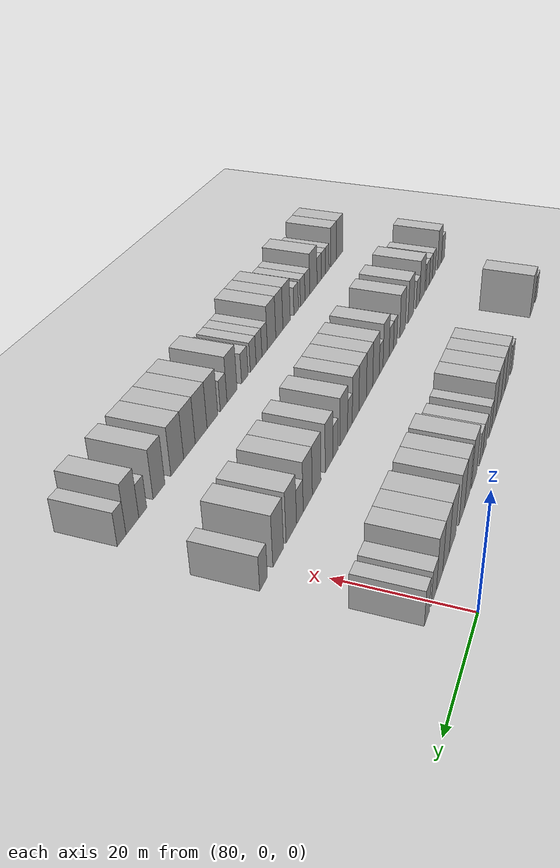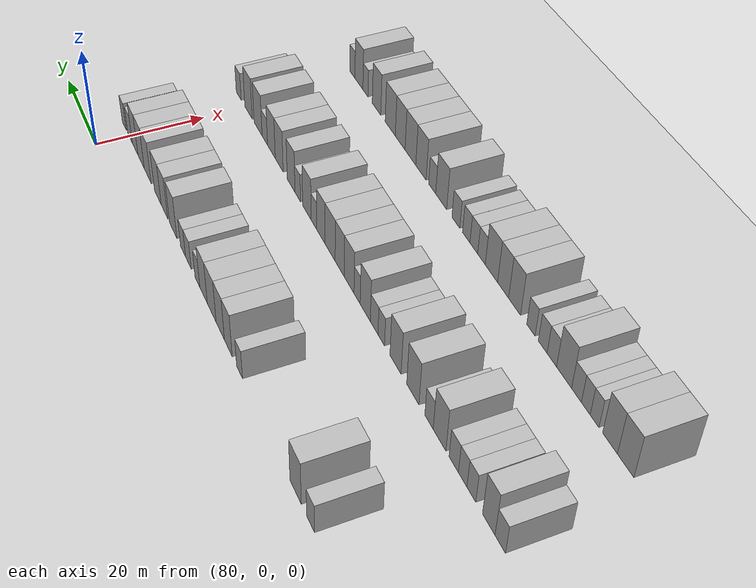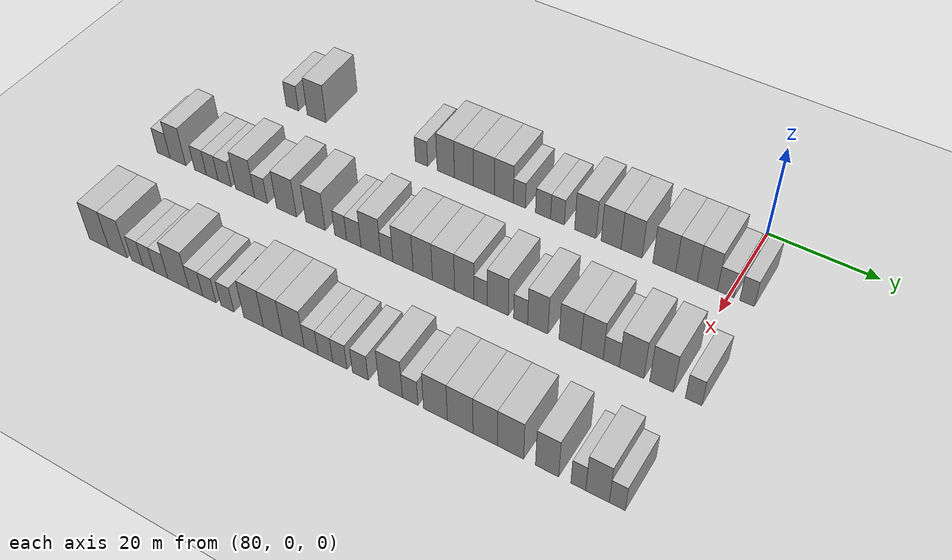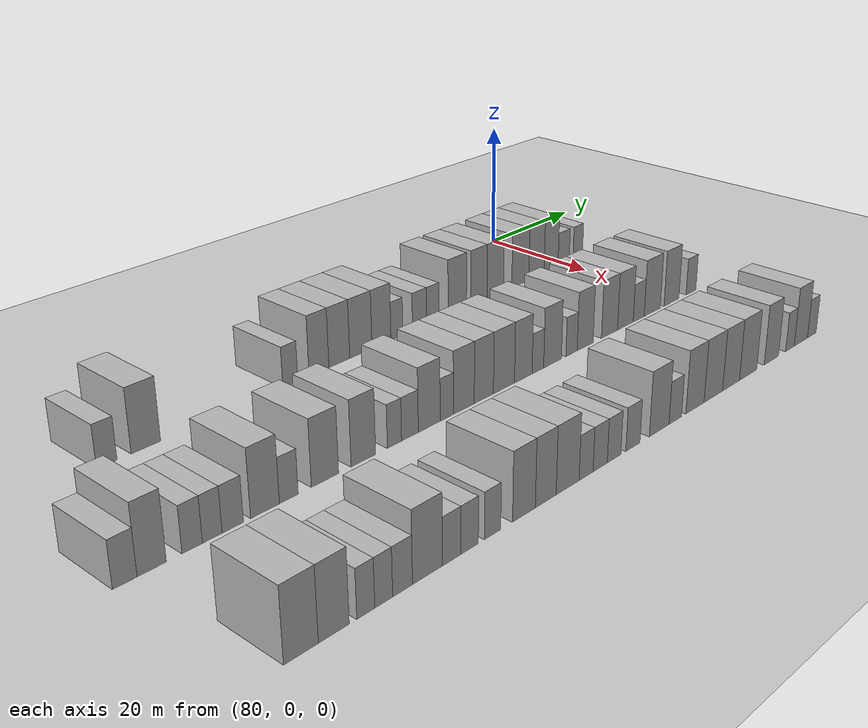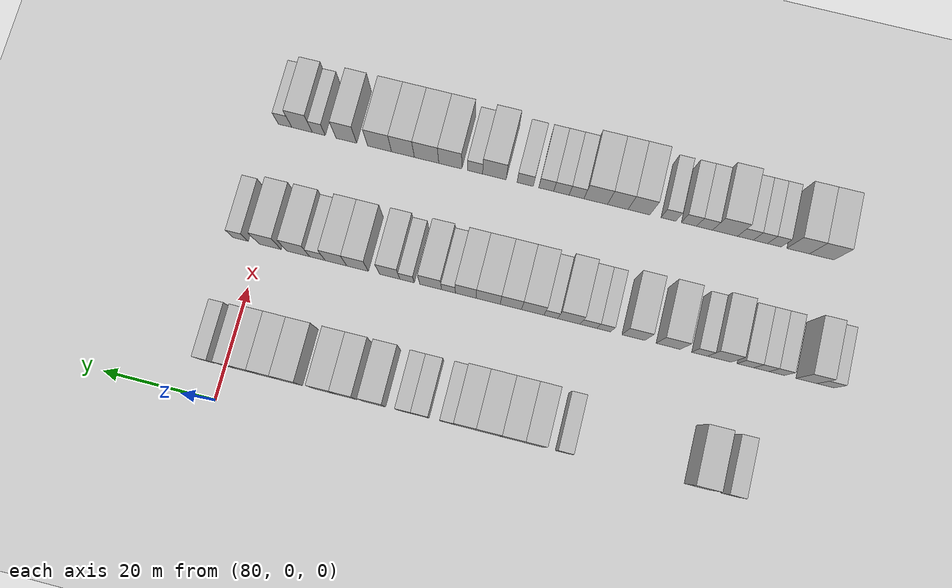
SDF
<sdf version="1.6">
 <world name="default">
  <include>
   <name>ground_plane_2</name>
   <uri>model://HANNAS_ground_plane</uri>
   <pose>100 0 0  0 0 0</pose>
  </include>
  <model name="building_643">
   <static>1</static>
   <pose>91.0000 -88.3164 0 0.000000 0.000000 0.000000</pose>
   <link name="link">
    <pose>0 0 3.00 0 0 0</pose>
    <collision name="collision"><geometry><box><size>10.0000 2.8639 6.0000</size></box></geometry></collision>
    <visual name="visual">
     <cast_shadows>0</cast_shadows>
     <geometry><box><size>10.0000 2.8639 6.0000</size></box></geometry>
     <material>
      <script>
       <uri>model://HANNAS_wall/materials/scripts</uri>
       <uri>model://HANNAS_wall/materials/textures</uri>
       <name>vrc/HANNAS_wall</name>
      </script>
     </material>
    </visual>
   </link>
  </model>
  <model name="building_644">
   <static>1</static>
   <pose>91.0000 -82.7383 0 0.000000 0.000000 0.000000</pose>
   <link name="link">
    <pose>0 0 4.50 0 0 0</pose>
    <collision name="collision"><geometry><box><size>10.0000 4.2922 9.0000</size></box></geometry></collision>
    <visual name="visual">
     <cast_shadows>0</cast_shadows>
     <geometry><box><size>10.0000 4.2922 9.0000</size></box></geometry>
     <material>
      <script>
       <uri>model://HANNAS_wall/materials/scripts</uri>
       <uri>model://HANNAS_wall/materials/textures</uri>
       <name>vrc/HANNAS_wall</name>
      </script>
     </material>
    </visual>
   </link>
  </model>
  <model name="building_645">
   <static>1</static>
   <pose>91.0000 -59.6268 0 0.000000 0.000000 0.000000</pose>
   <link name="link">
    <pose>0 0 3.00 0 0 0</pose>
    <collision name="collision"><geometry><box><size>10.0000 2.6437 6.0000</size></box></geometry></collision>
    <visual name="visual">
     <cast_shadows>0</cast_shadows>
     <geometry><box><size>10.0000 2.6437 6.0000</size></box></geometry>
     <material>
      <script>
       <uri>model://HANNAS_wall/materials/scripts</uri>
       <uri>model://HANNAS_wall/materials/textures</uri>
       <name>vrc/HANNAS_wall</name>
      </script>
     </material>
    </visual>
   </link>
  </model>
  <model name="building_646">
   <static>1</static>
   <pose>91.0000 -54.4919 0 0.000000 0.000000 0.000000</pose>
   <link name="link">
    <pose>0 0 4.50 0 0 0</pose>
    <collision name="collision"><geometry><box><size>10.0000 3.6260 9.0000</size></box></geometry></collision>
    <visual name="visual">
     <cast_shadows>0</cast_shadows>
     <geometry><box><size>10.0000 3.6260 9.0000</size></box></geometry>
     <material>
      <script>
       <uri>model://HANNAS_wall/materials/scripts</uri>
       <uri>model://HANNAS_wall/materials/textures</uri>
       <name>vrc/HANNAS_wall</name>
      </script>
     </material>
    </visual>
   </link>
  </model>
  <model name="building_647">
   <static>1</static>
   <pose>91.0000 -50.7191 0 0.000000 0.000000 0.000000</pose>
   <link name="link">
    <pose>0 0 4.50 0 0 0</pose>
    <collision name="collision"><geometry><box><size>10.0000 3.9195 9.0000</size></box></geometry></collision>
    <visual name="visual">
     <cast_shadows>0</cast_shadows>
     <geometry><box><size>10.0000 3.9195 9.0000</size></box></geometry>
     <material>
      <script>
       <uri>model://HANNAS_wall/materials/scripts</uri>
       <uri>model://HANNAS_wall/materials/textures</uri>
       <name>vrc/HANNAS_wall</name>
      </script>
     </material>
    </visual>
   </link>
  </model>
  <model name="building_648">
   <static>1</static>
   <pose>91.0000 -46.6014 0 0.000000 0.000000 0.000000</pose>
   <link name="link">
    <pose>0 0 4.50 0 0 0</pose>
    <collision name="collision"><geometry><box><size>10.0000 4.3159 9.0000</size></box></geometry></collision>
    <visual name="visual">
     <cast_shadows>0</cast_shadows>
     <geometry><box><size>10.0000 4.3159 9.0000</size></box></geometry>
     <material>
      <script>
       <uri>model://HANNAS_wall/materials/scripts</uri>
       <uri>model://HANNAS_wall/materials/textures</uri>
       <name>vrc/HANNAS_wall</name>
      </script>
     </material>
    </visual>
   </link>
  </model>
  <model name="building_649">
   <static>1</static>
   <pose>91.0000 -42.5473 0 0.000000 0.000000 0.000000</pose>
   <link name="link">
    <pose>0 0 4.50 0 0 0</pose>
    <collision name="collision"><geometry><box><size>10.0000 3.7922 9.0000</size></box></geometry></collision>
    <visual name="visual">
     <cast_shadows>0</cast_shadows>
     <geometry><box><size>10.0000 3.7922 9.0000</size></box></geometry>
     <material>
      <script>
       <uri>model://HANNAS_wall/materials/scripts</uri>
       <uri>model://HANNAS_wall/materials/textures</uri>
       <name>vrc/HANNAS_wall</name>
      </script>
     </material>
    </visual>
   </link>
  </model>
  <model name="building_650">
   <static>1</static>
   <pose>91.0000 -39.4454 0 0.000000 0.000000 0.000000</pose>
   <link name="link">
    <pose>0 0 3.00 0 0 0</pose>
    <collision name="collision"><geometry><box><size>10.0000 2.4118 6.0000</size></box></geometry></collision>
    <visual name="visual">
     <cast_shadows>0</cast_shadows>
     <geometry><box><size>10.0000 2.4118 6.0000</size></box></geometry>
     <material>
      <script>
       <uri>model://HANNAS_wall/materials/scripts</uri>
       <uri>model://HANNAS_wall/materials/textures</uri>
       <name>vrc/HANNAS_wall</name>
      </script>
     </material>
    </visual>
   </link>
  </model>
  <model name="building_651">
   <static>1</static>
   <pose>91.0000 -34.7505 0 0.000000 0.000000 0.000000</pose>
   <link name="link">
    <pose>0 0 3.00 0 0 0</pose>
    <collision name="collision"><geometry><box><size>10.0000 2.9779 6.0000</size></box></geometry></collision>
    <visual name="visual">
     <cast_shadows>0</cast_shadows>
     <geometry><box><size>10.0000 2.9779 6.0000</size></box></geometry>
     <material>
      <script>
       <uri>model://HANNAS_wall/materials/scripts</uri>
       <uri>model://HANNAS_wall/materials/textures</uri>
       <name>vrc/HANNAS_wall</name>
      </script>
     </material>
    </visual>
   </link>
  </model>
  <model name="building_652">
   <static>1</static>
   <pose>91.0000 -31.9219 0 0.000000 0.000000 0.000000</pose>
   <link name="link">
    <pose>0 0 3.00 0 0 0</pose>
    <collision name="collision"><geometry><box><size>10.0000 2.6793 6.0000</size></box></geometry></collision>
    <visual name="visual">
     <cast_shadows>0</cast_shadows>
     <geometry><box><size>10.0000 2.6793 6.0000</size></box></geometry>
     <material>
      <script>
       <uri>model://HANNAS_wall/materials/scripts</uri>
       <uri>model://HANNAS_wall/materials/textures</uri>
       <name>vrc/HANNAS_wall</name>
      </script>
     </material>
    </visual>
   </link>
  </model>
  <model name="building_653">
   <static>1</static>
   <pose>91.0000 -26.5360 0 0.000000 0.000000 0.000000</pose>
   <link name="link">
    <pose>0 0 4.50 0 0 0</pose>
    <collision name="collision"><geometry><box><size>10.0000 4.0925 9.0000</size></box></geometry></collision>
    <visual name="visual">
     <cast_shadows>0</cast_shadows>
     <geometry><box><size>10.0000 4.0925 9.0000</size></box></geometry>
     <material>
      <script>
       <uri>model://HANNAS_wall/materials/scripts</uri>
       <uri>model://HANNAS_wall/materials/textures</uri>
       <name>vrc/HANNAS_wall</name>
      </script>
     </material>
    </visual>
   </link>
  </model>
  <model name="building_654">
   <static>1</static>
   <pose>91.0000 -21.6153 0 0.000000 0.000000 0.000000</pose>
   <link name="link">
    <pose>0 0 4.50 0 0 0</pose>
    <collision name="collision"><geometry><box><size>10.0000 3.7489 9.0000</size></box></geometry></collision>
    <visual name="visual">
     <cast_shadows>0</cast_shadows>
     <geometry><box><size>10.0000 3.7489 9.0000</size></box></geometry>
     <material>
      <script>
       <uri>model://HANNAS_wall/materials/scripts</uri>
       <uri>model://HANNAS_wall/materials/textures</uri>
       <name>vrc/HANNAS_wall</name>
      </script>
     </material>
    </visual>
   </link>
  </model>
  <model name="building_655">
   <static>1</static>
   <pose>91.0000 -17.7852 0 0.000000 0.000000 0.000000</pose>
   <link name="link">
    <pose>0 0 4.50 0 0 0</pose>
    <collision name="collision"><geometry><box><size>10.0000 3.9114 9.0000</size></box></geometry></collision>
    <visual name="visual">
     <cast_shadows>0</cast_shadows>
     <geometry><box><size>10.0000 3.9114 9.0000</size></box></geometry>
     <material>
      <script>
       <uri>model://HANNAS_wall/materials/scripts</uri>
       <uri>model://HANNAS_wall/materials/textures</uri>
       <name>vrc/HANNAS_wall</name>
      </script>
     </material>
    </visual>
   </link>
  </model>
  <model name="building_656">
   <static>1</static>
   <pose>91.0000 -11.7308 0 0.000000 0.000000 0.000000</pose>
   <link name="link">
    <pose>0 0 4.50 0 0 0</pose>
    <collision name="collision"><geometry><box><size>10.0000 4.1974 9.0000</size></box></geometry></collision>
    <visual name="visual">
     <cast_shadows>0</cast_shadows>
     <geometry><box><size>10.0000 4.1974 9.0000</size></box></geometry>
     <material>
      <script>
       <uri>model://HANNAS_wall/materials/scripts</uri>
       <uri>model://HANNAS_wall/materials/textures</uri>
       <name>vrc/HANNAS_wall</name>
      </script>
     </material>
    </visual>
   </link>
  </model>
  <model name="building_657">
   <static>1</static>
   <pose>91.0000 -7.6891 0 0.000000 0.000000 0.000000</pose>
   <link name="link">
    <pose>0 0 4.50 0 0 0</pose>
    <collision name="collision"><geometry><box><size>10.0000 3.8860 9.0000</size></box></geometry></collision>
    <visual name="visual">
     <cast_shadows>0</cast_shadows>
     <geometry><box><size>10.0000 3.8860 9.0000</size></box></geometry>
     <material>
      <script>
       <uri>model://HANNAS_wall/materials/scripts</uri>
       <uri>model://HANNAS_wall/materials/textures</uri>
       <name>vrc/HANNAS_wall</name>
      </script>
     </material>
    </visual>
   </link>
  </model>
  <model name="building_658">
   <static>1</static>
   <pose>91.0000 -3.9419 0 0.000000 0.000000 0.000000</pose>
   <link name="link">
    <pose>0 0 4.50 0 0 0</pose>
    <collision name="collision"><geometry><box><size>10.0000 3.6084 9.0000</size></box></geometry></collision>
    <visual name="visual">
     <cast_shadows>0</cast_shadows>
     <geometry><box><size>10.0000 3.6084 9.0000</size></box></geometry>
     <material>
      <script>
       <uri>model://HANNAS_wall/materials/scripts</uri>
       <uri>model://HANNAS_wall/materials/textures</uri>
       <name>vrc/HANNAS_wall</name>
      </script>
     </material>
    </visual>
   </link>
  </model>
  <model name="building_659">
   <static>1</static>
   <pose>91.0000 -0.6625 0 0.000000 0.000000 0.000000</pose>
   <link name="link">
    <pose>0 0 3.00 0 0 0</pose>
    <collision name="collision"><geometry><box><size>10.0000 2.9503 6.0000</size></box></geometry></collision>
    <visual name="visual">
     <cast_shadows>0</cast_shadows>
     <geometry><box><size>10.0000 2.9503 6.0000</size></box></geometry>
     <material>
      <script>
       <uri>model://HANNAS_wall/materials/scripts</uri>
       <uri>model://HANNAS_wall/materials/textures</uri>
       <name>vrc/HANNAS_wall</name>
      </script>
     </material>
    </visual>
   </link>
  </model>
  <model name="building_660">
   <static>1</static>
   <pose>91.0000 3.0958 0 0.000000 0.000000 0.000000</pose>
   <link name="link">
    <pose>0 0 3.00 0 0 0</pose>
    <collision name="collision"><geometry><box><size>10.0000 2.5663 6.0000</size></box></geometry></collision>
    <visual name="visual">
     <cast_shadows>0</cast_shadows>
     <geometry><box><size>10.0000 2.5663 6.0000</size></box></geometry>
     <material>
      <script>
       <uri>model://HANNAS_wall/materials/scripts</uri>
       <uri>model://HANNAS_wall/materials/textures</uri>
       <name>vrc/HANNAS_wall</name>
      </script>
     </material>
    </visual>
   </link>
  </model>
  <model name="building_827">
   <static>1</static>
   <pose>113.0000 -100.6478 0 0.000000 0.000000 0.000000</pose>
   <link name="link">
    <pose>0 0 3.00 0 0 0</pose>
    <collision name="collision"><geometry><box><size>10.0000 2.9859 6.0000</size></box></geometry></collision>
    <visual name="visual">
     <cast_shadows>0</cast_shadows>
     <geometry><box><size>10.0000 2.9859 6.0000</size></box></geometry>
     <material>
      <script>
       <uri>model://HANNAS_wall/materials/scripts</uri>
       <uri>model://HANNAS_wall/materials/textures</uri>
       <name>vrc/HANNAS_wall</name>
      </script>
     </material>
    </visual>
   </link>
  </model>
  <model name="building_828">
   <static>1</static>
   <pose>113.0000 -97.3290 0 0.000000 0.000000 0.000000</pose>
   <link name="link">
    <pose>0 0 4.50 0 0 0</pose>
    <collision name="collision"><geometry><box><size>10.0000 3.6518 9.0000</size></box></geometry></collision>
    <visual name="visual">
     <cast_shadows>0</cast_shadows>
     <geometry><box><size>10.0000 3.6518 9.0000</size></box></geometry>
     <material>
      <script>
       <uri>model://HANNAS_wall/materials/scripts</uri>
       <uri>model://HANNAS_wall/materials/textures</uri>
       <name>vrc/HANNAS_wall</name>
      </script>
     </material>
    </visual>
   </link>
  </model>
  <model name="building_829">
   <static>1</static>
   <pose>113.0000 -92.1560 0 0.000000 0.000000 0.000000</pose>
   <link name="link">
    <pose>0 0 3.00 0 0 0</pose>
    <collision name="collision"><geometry><box><size>10.0000 2.6942 6.0000</size></box></geometry></collision>
    <visual name="visual">
     <cast_shadows>0</cast_shadows>
     <geometry><box><size>10.0000 2.6942 6.0000</size></box></geometry>
     <material>
      <script>
       <uri>model://HANNAS_wall/materials/scripts</uri>
       <uri>model://HANNAS_wall/materials/textures</uri>
       <name>vrc/HANNAS_wall</name>
      </script>
     </material>
    </visual>
   </link>
  </model>
  <model name="building_830">
   <static>1</static>
   <pose>113.0000 -89.4869 0 0.000000 0.000000 0.000000</pose>
   <link name="link">
    <pose>0 0 3.00 0 0 0</pose>
    <collision name="collision"><geometry><box><size>10.0000 2.6440 6.0000</size></box></geometry></collision>
    <visual name="visual">
     <cast_shadows>0</cast_shadows>
     <geometry><box><size>10.0000 2.6440 6.0000</size></box></geometry>
     <material>
      <script>
       <uri>model://HANNAS_wall/materials/scripts</uri>
       <uri>model://HANNAS_wall/materials/textures</uri>
       <name>vrc/HANNAS_wall</name>
      </script>
     </material>
    </visual>
   </link>
  </model>
  <model name="building_831">
   <static>1</static>
   <pose>113.0000 -86.6893 0 0.000000 0.000000 0.000000</pose>
   <link name="link">
    <pose>0 0 3.00 0 0 0</pose>
    <collision name="collision"><geometry><box><size>10.0000 2.9512 6.0000</size></box></geometry></collision>
    <visual name="visual">
     <cast_shadows>0</cast_shadows>
     <geometry><box><size>10.0000 2.9512 6.0000</size></box></geometry>
     <material>
      <script>
       <uri>model://HANNAS_wall/materials/scripts</uri>
       <uri>model://HANNAS_wall/materials/textures</uri>
       <name>vrc/HANNAS_wall</name>
      </script>
     </material>
    </visual>
   </link>
  </model>
  <model name="building_832">
   <static>1</static>
   <pose>113.0000 -82.1288 0 0.000000 0.000000 0.000000</pose>
   <link name="link">
    <pose>0 0 4.50 0 0 0</pose>
    <collision name="collision"><geometry><box><size>10.0000 4.1698 9.0000</size></box></geometry></collision>
    <visual name="visual">
     <cast_shadows>0</cast_shadows>
     <geometry><box><size>10.0000 4.1698 9.0000</size></box></geometry>
     <material>
      <script>
       <uri>model://HANNAS_wall/materials/scripts</uri>
       <uri>model://HANNAS_wall/materials/textures</uri>
       <name>vrc/HANNAS_wall</name>
      </script>
     </material>
    </visual>
   </link>
  </model>
  <model name="building_833">
   <static>1</static>
   <pose>113.0000 -78.6470 0 0.000000 0.000000 0.000000</pose>
   <link name="link">
    <pose>0 0 3.00 0 0 0</pose>
    <collision name="collision"><geometry><box><size>10.0000 2.7938 6.0000</size></box></geometry></collision>
    <visual name="visual">
     <cast_shadows>0</cast_shadows>
     <geometry><box><size>10.0000 2.7938 6.0000</size></box></geometry>
     <material>
      <script>
       <uri>model://HANNAS_wall/materials/scripts</uri>
       <uri>model://HANNAS_wall/materials/textures</uri>
       <name>vrc/HANNAS_wall</name>
      </script>
     </material>
    </visual>
   </link>
  </model>
  <model name="building_834">
   <static>1</static>
   <pose>113.0000 -73.1141 0 0.000000 0.000000 0.000000</pose>
   <link name="link">
    <pose>0 0 4.50 0 0 0</pose>
    <collision name="collision"><geometry><box><size>10.0000 4.2722 9.0000</size></box></geometry></collision>
    <visual name="visual">
     <cast_shadows>0</cast_shadows>
     <geometry><box><size>10.0000 4.2722 9.0000</size></box></geometry>
     <material>
      <script>
       <uri>model://HANNAS_wall/materials/scripts</uri>
       <uri>model://HANNAS_wall/materials/textures</uri>
       <name>vrc/HANNAS_wall</name>
      </script>
     </material>
    </visual>
   </link>
  </model>
  <model name="building_835">
   <static>1</static>
   <pose>113.0000 -66.9494 0 0.000000 0.000000 0.000000</pose>
   <link name="link">
    <pose>0 0 4.50 0 0 0</pose>
    <collision name="collision"><geometry><box><size>10.0000 4.0571 9.0000</size></box></geometry></collision>
    <visual name="visual">
     <cast_shadows>0</cast_shadows>
     <geometry><box><size>10.0000 4.0571 9.0000</size></box></geometry>
     <material>
      <script>
       <uri>model://HANNAS_wall/materials/scripts</uri>
       <uri>model://HANNAS_wall/materials/textures</uri>
       <name>vrc/HANNAS_wall</name>
      </script>
     </material>
    </visual>
   </link>
  </model>
  <model name="building_836">
   <static>1</static>
   <pose>113.0000 -61.6947 0 0.000000 0.000000 0.000000</pose>
   <link name="link">
    <pose>0 0 3.00 0 0 0</pose>
    <collision name="collision"><geometry><box><size>10.0000 2.4524 6.0000</size></box></geometry></collision>
    <visual name="visual">
     <cast_shadows>0</cast_shadows>
     <geometry><box><size>10.0000 2.4524 6.0000</size></box></geometry>
     <material>
      <script>
       <uri>model://HANNAS_wall/materials/scripts</uri>
       <uri>model://HANNAS_wall/materials/textures</uri>
       <name>vrc/HANNAS_wall</name>
      </script>
     </material>
    </visual>
   </link>
  </model>
  <model name="building_837">
   <static>1</static>
   <pose>113.0000 -58.9876 0 0.000000 0.000000 0.000000</pose>
   <link name="link">
    <pose>0 0 3.00 0 0 0</pose>
    <collision name="collision"><geometry><box><size>10.0000 2.9618 6.0000</size></box></geometry></collision>
    <visual name="visual">
     <cast_shadows>0</cast_shadows>
     <geometry><box><size>10.0000 2.9618 6.0000</size></box></geometry>
     <material>
      <script>
       <uri>model://HANNAS_wall/materials/scripts</uri>
       <uri>model://HANNAS_wall/materials/textures</uri>
       <name>vrc/HANNAS_wall</name>
      </script>
     </material>
    </visual>
   </link>
  </model>
  <model name="building_838">
   <static>1</static>
   <pose>113.0000 -55.5111 0 0.000000 0.000000 0.000000</pose>
   <link name="link">
    <pose>0 0 4.50 0 0 0</pose>
    <collision name="collision"><geometry><box><size>10.0000 3.9912 9.0000</size></box></geometry></collision>
    <visual name="visual">
     <cast_shadows>0</cast_shadows>
     <geometry><box><size>10.0000 3.9912 9.0000</size></box></geometry>
     <material>
      <script>
       <uri>model://HANNAS_wall/materials/scripts</uri>
       <uri>model://HANNAS_wall/materials/textures</uri>
       <name>vrc/HANNAS_wall</name>
      </script>
     </material>
    </visual>
   </link>
  </model>
  <model name="building_839">
   <static>1</static>
   <pose>113.0000 -52.2864 0 0.000000 0.000000 0.000000</pose>
   <link name="link">
    <pose>0 0 3.00 0 0 0</pose>
    <collision name="collision"><geometry><box><size>10.0000 2.4582 6.0000</size></box></geometry></collision>
    <visual name="visual">
     <cast_shadows>0</cast_shadows>
     <geometry><box><size>10.0000 2.4582 6.0000</size></box></geometry>
     <material>
      <script>
       <uri>model://HANNAS_wall/materials/scripts</uri>
       <uri>model://HANNAS_wall/materials/textures</uri>
       <name>vrc/HANNAS_wall</name>
      </script>
     </material>
    </visual>
   </link>
  </model>
  <model name="building_840">
   <static>1</static>
   <pose>113.0000 -49.0506 0 0.000000 0.000000 0.000000</pose>
   <link name="link">
    <pose>0 0 4.50 0 0 0</pose>
    <collision name="collision"><geometry><box><size>10.0000 4.0135 9.0000</size></box></geometry></collision>
    <visual name="visual">
     <cast_shadows>0</cast_shadows>
     <geometry><box><size>10.0000 4.0135 9.0000</size></box></geometry>
     <material>
      <script>
       <uri>model://HANNAS_wall/materials/scripts</uri>
       <uri>model://HANNAS_wall/materials/textures</uri>
       <name>vrc/HANNAS_wall</name>
      </script>
     </material>
    </visual>
   </link>
  </model>
  <model name="building_841">
   <static>1</static>
   <pose>113.0000 -45.1492 0 0.000000 0.000000 0.000000</pose>
   <link name="link">
    <pose>0 0 4.50 0 0 0</pose>
    <collision name="collision"><geometry><box><size>10.0000 3.7891 9.0000</size></box></geometry></collision>
    <visual name="visual">
     <cast_shadows>0</cast_shadows>
     <geometry><box><size>10.0000 3.7891 9.0000</size></box></geometry>
     <material>
      <script>
       <uri>model://HANNAS_wall/materials/scripts</uri>
       <uri>model://HANNAS_wall/materials/textures</uri>
       <name>vrc/HANNAS_wall</name>
      </script>
     </material>
    </visual>
   </link>
  </model>
  <model name="building_842">
   <static>1</static>
   <pose>113.0000 -41.1039 0 0.000000 0.000000 0.000000</pose>
   <link name="link">
    <pose>0 0 4.50 0 0 0</pose>
    <collision name="collision"><geometry><box><size>10.0000 4.3015 9.0000</size></box></geometry></collision>
    <visual name="visual">
     <cast_shadows>0</cast_shadows>
     <geometry><box><size>10.0000 4.3015 9.0000</size></box></geometry>
     <material>
      <script>
       <uri>model://HANNAS_wall/materials/scripts</uri>
       <uri>model://HANNAS_wall/materials/textures</uri>
       <name>vrc/HANNAS_wall</name>
      </script>
     </material>
    </visual>
   </link>
  </model>
  <model name="building_843">
   <static>1</static>
   <pose>113.0000 -37.0992 0 0.000000 0.000000 0.000000</pose>
   <link name="link">
    <pose>0 0 4.50 0 0 0</pose>
    <collision name="collision"><geometry><box><size>10.0000 3.7078 9.0000</size></box></geometry></collision>
    <visual name="visual">
     <cast_shadows>0</cast_shadows>
     <geometry><box><size>10.0000 3.7078 9.0000</size></box></geometry>
     <material>
      <script>
       <uri>model://HANNAS_wall/materials/scripts</uri>
       <uri>model://HANNAS_wall/materials/textures</uri>
       <name>vrc/HANNAS_wall</name>
      </script>
     </material>
    </visual>
   </link>
  </model>
  <model name="building_844">
   <static>1</static>
   <pose>113.0000 -34.0025 0 0.000000 0.000000 0.000000</pose>
   <link name="link">
    <pose>0 0 3.00 0 0 0</pose>
    <collision name="collision"><geometry><box><size>10.0000 2.4857 6.0000</size></box></geometry></collision>
    <visual name="visual">
     <cast_shadows>0</cast_shadows>
     <geometry><box><size>10.0000 2.4857 6.0000</size></box></geometry>
     <material>
      <script>
       <uri>model://HANNAS_wall/materials/scripts</uri>
       <uri>model://HANNAS_wall/materials/textures</uri>
       <name>vrc/HANNAS_wall</name>
      </script>
     </material>
    </visual>
   </link>
  </model>
  <model name="building_845">
   <static>1</static>
   <pose>113.0000 -30.7975 0 0.000000 0.000000 0.000000</pose>
   <link name="link">
    <pose>0 0 4.50 0 0 0</pose>
    <collision name="collision"><geometry><box><size>10.0000 3.9243 9.0000</size></box></geometry></collision>
    <visual name="visual">
     <cast_shadows>0</cast_shadows>
     <geometry><box><size>10.0000 3.9243 9.0000</size></box></geometry>
     <material>
      <script>
       <uri>model://HANNAS_wall/materials/scripts</uri>
       <uri>model://HANNAS_wall/materials/textures</uri>
       <name>vrc/HANNAS_wall</name>
      </script>
     </material>
    </visual>
   </link>
  </model>
  <model name="building_846">
   <static>1</static>
   <pose>113.0000 -26.5447 0 0.000000 0.000000 0.000000</pose>
   <link name="link">
    <pose>0 0 3.00 0 0 0</pose>
    <collision name="collision"><geometry><box><size>10.0000 2.5813 6.0000</size></box></geometry></collision>
    <visual name="visual">
     <cast_shadows>0</cast_shadows>
     <geometry><box><size>10.0000 2.5813 6.0000</size></box></geometry>
     <material>
      <script>
       <uri>model://HANNAS_wall/materials/scripts</uri>
       <uri>model://HANNAS_wall/materials/textures</uri>
       <name>vrc/HANNAS_wall</name>
      </script>
     </material>
    </visual>
   </link>
  </model>
  <model name="building_847">
   <static>1</static>
   <pose>113.0000 -23.3981 0 0.000000 0.000000 0.000000</pose>
   <link name="link">
    <pose>0 0 4.50 0 0 0</pose>
    <collision name="collision"><geometry><box><size>10.0000 3.7118 9.0000</size></box></geometry></collision>
    <visual name="visual">
     <cast_shadows>0</cast_shadows>
     <geometry><box><size>10.0000 3.7118 9.0000</size></box></geometry>
     <material>
      <script>
       <uri>model://HANNAS_wall/materials/scripts</uri>
       <uri>model://HANNAS_wall/materials/textures</uri>
       <name>vrc/HANNAS_wall</name>
      </script>
     </material>
    </visual>
   </link>
  </model>
  <model name="building_848">
   <static>1</static>
   <pose>113.0000 -17.5869 0 0.000000 0.000000 0.000000</pose>
   <link name="link">
    <pose>0 0 4.50 0 0 0</pose>
    <collision name="collision"><geometry><box><size>10.0000 3.9107 9.0000</size></box></geometry></collision>
    <visual name="visual">
     <cast_shadows>0</cast_shadows>
     <geometry><box><size>10.0000 3.9107 9.0000</size></box></geometry>
     <material>
      <script>
       <uri>model://HANNAS_wall/materials/scripts</uri>
       <uri>model://HANNAS_wall/materials/textures</uri>
       <name>vrc/HANNAS_wall</name>
      </script>
     </material>
    </visual>
   </link>
  </model>
  <model name="building_849">
   <static>1</static>
   <pose>113.0000 -13.6650 0 0.000000 0.000000 0.000000</pose>
   <link name="link">
    <pose>0 0 4.50 0 0 0</pose>
    <collision name="collision"><geometry><box><size>10.0000 3.9332 9.0000</size></box></geometry></collision>
    <visual name="visual">
     <cast_shadows>0</cast_shadows>
     <geometry><box><size>10.0000 3.9332 9.0000</size></box></geometry>
     <material>
      <script>
       <uri>model://HANNAS_wall/materials/scripts</uri>
       <uri>model://HANNAS_wall/materials/textures</uri>
       <name>vrc/HANNAS_wall</name>
      </script>
     </material>
    </visual>
   </link>
  </model>
  <model name="building_850">
   <static>1</static>
   <pose>113.0000 -10.2884 0 0.000000 0.000000 0.000000</pose>
   <link name="link">
    <pose>0 0 3.00 0 0 0</pose>
    <collision name="collision"><geometry><box><size>10.0000 2.8199 6.0000</size></box></geometry></collision>
    <visual name="visual">
     <cast_shadows>0</cast_shadows>
     <geometry><box><size>10.0000 2.8199 6.0000</size></box></geometry>
     <material>
      <script>
       <uri>model://HANNAS_wall/materials/scripts</uri>
       <uri>model://HANNAS_wall/materials/textures</uri>
       <name>vrc/HANNAS_wall</name>
      </script>
     </material>
    </visual>
   </link>
  </model>
  <model name="building_851">
   <static>1</static>
   <pose>113.0000 -6.7711 0 0.000000 0.000000 0.000000</pose>
   <link name="link">
    <pose>0 0 4.50 0 0 0</pose>
    <collision name="collision"><geometry><box><size>10.0000 4.2149 9.0000</size></box></geometry></collision>
    <visual name="visual">
     <cast_shadows>0</cast_shadows>
     <geometry><box><size>10.0000 4.2149 9.0000</size></box></geometry>
     <material>
      <script>
       <uri>model://HANNAS_wall/materials/scripts</uri>
       <uri>model://HANNAS_wall/materials/textures</uri>
       <name>vrc/HANNAS_wall</name>
      </script>
     </material>
    </visual>
   </link>
  </model>
  <model name="building_852">
   <static>1</static>
   <pose>113.0000 -1.6491 0 0.000000 0.000000 0.000000</pose>
   <link name="link">
    <pose>0 0 4.50 0 0 0</pose>
    <collision name="collision"><geometry><box><size>10.0000 4.0291 9.0000</size></box></geometry></collision>
    <visual name="visual">
     <cast_shadows>0</cast_shadows>
     <geometry><box><size>10.0000 4.0291 9.0000</size></box></geometry>
     <material>
      <script>
       <uri>model://HANNAS_wall/materials/scripts</uri>
       <uri>model://HANNAS_wall/materials/textures</uri>
       <name>vrc/HANNAS_wall</name>
      </script>
     </material>
    </visual>
   </link>
  </model>
  <model name="building_853">
   <static>1</static>
   <pose>113.0000 3.7383 0 0.000000 0.000000 0.000000</pose>
   <link name="link">
    <pose>0 0 3.00 0 0 0</pose>
    <collision name="collision"><geometry><box><size>10.0000 2.7457 6.0000</size></box></geometry></collision>
    <visual name="visual">
     <cast_shadows>0</cast_shadows>
     <geometry><box><size>10.0000 2.7457 6.0000</size></box></geometry>
     <material>
      <script>
       <uri>model://HANNAS_wall/materials/scripts</uri>
       <uri>model://HANNAS_wall/materials/textures</uri>
       <name>vrc/HANNAS_wall</name>
      </script>
     </material>
    </visual>
   </link>
  </model>
  <model name="building_1015">
   <static>1</static>
   <pose>135.0000 -95.8933 0 0.000000 0.000000 0.000000</pose>
   <link name="link">
    <pose>0 0 4.50 0 0 0</pose>
    <collision name="collision"><geometry><box><size>10.0000 4.3553 9.0000</size></box></geometry></collision>
    <visual name="visual">
     <cast_shadows>0</cast_shadows>
     <geometry><box><size>10.0000 4.3553 9.0000</size></box></geometry>
     <material>
      <script>
       <uri>model://HANNAS_wall/materials/scripts</uri>
       <uri>model://HANNAS_wall/materials/textures</uri>
       <name>vrc/HANNAS_wall</name>
      </script>
     </material>
    </visual>
   </link>
  </model>
  <model name="building_1016">
   <static>1</static>
   <pose>135.0000 -91.7019 0 0.000000 0.000000 0.000000</pose>
   <link name="link">
    <pose>0 0 4.50 0 0 0</pose>
    <collision name="collision"><geometry><box><size>10.0000 4.0276 9.0000</size></box></geometry></collision>
    <visual name="visual">
     <cast_shadows>0</cast_shadows>
     <geometry><box><size>10.0000 4.0276 9.0000</size></box></geometry>
     <material>
      <script>
       <uri>model://HANNAS_wall/materials/scripts</uri>
       <uri>model://HANNAS_wall/materials/textures</uri>
       <name>vrc/HANNAS_wall</name>
      </script>
     </material>
    </visual>
   </link>
  </model>
  <model name="building_1017">
   <static>1</static>
   <pose>135.0000 -87.4520 0 0.000000 0.000000 0.000000</pose>
   <link name="link">
    <pose>0 0 3.00 0 0 0</pose>
    <collision name="collision"><geometry><box><size>10.0000 2.4720 6.0000</size></box></geometry></collision>
    <visual name="visual">
     <cast_shadows>0</cast_shadows>
     <geometry><box><size>10.0000 2.4720 6.0000</size></box></geometry>
     <material>
      <script>
       <uri>model://HANNAS_wall/materials/scripts</uri>
       <uri>model://HANNAS_wall/materials/textures</uri>
       <name>vrc/HANNAS_wall</name>
      </script>
     </material>
    </visual>
   </link>
  </model>
  <model name="building_1018">
   <static>1</static>
   <pose>135.0000 -84.9649 0 0.000000 0.000000 0.000000</pose>
   <link name="link">
    <pose>0 0 3.00 0 0 0</pose>
    <collision name="collision"><geometry><box><size>10.0000 2.5022 6.0000</size></box></geometry></collision>
    <visual name="visual">
     <cast_shadows>0</cast_shadows>
     <geometry><box><size>10.0000 2.5022 6.0000</size></box></geometry>
     <material>
      <script>
       <uri>model://HANNAS_wall/materials/scripts</uri>
       <uri>model://HANNAS_wall/materials/textures</uri>
       <name>vrc/HANNAS_wall</name>
      </script>
     </material>
    </visual>
   </link>
  </model>
  <model name="building_1019">
   <static>1</static>
   <pose>135.0000 -82.2936 0 0.000000 0.000000 0.000000</pose>
   <link name="link">
    <pose>0 0 3.00 0 0 0</pose>
    <collision name="collision"><geometry><box><size>10.0000 2.8404 6.0000</size></box></geometry></collision>
    <visual name="visual">
     <cast_shadows>0</cast_shadows>
     <geometry><box><size>10.0000 2.8404 6.0000</size></box></geometry>
     <material>
      <script>
       <uri>model://HANNAS_wall/materials/scripts</uri>
       <uri>model://HANNAS_wall/materials/textures</uri>
       <name>vrc/HANNAS_wall</name>
      </script>
     </material>
    </visual>
   </link>
  </model>
  <model name="building_1020">
   <static>1</static>
   <pose>135.0000 -78.6257 0 0.000000 0.000000 0.000000</pose>
   <link name="link">
    <pose>0 0 4.50 0 0 0</pose>
    <collision name="collision"><geometry><box><size>10.0000 4.4956 9.0000</size></box></geometry></collision>
    <visual name="visual">
     <cast_shadows>0</cast_shadows>
     <geometry><box><size>10.0000 4.4956 9.0000</size></box></geometry>
     <material>
      <script>
       <uri>model://HANNAS_wall/materials/scripts</uri>
       <uri>model://HANNAS_wall/materials/textures</uri>
       <name>vrc/HANNAS_wall</name>
      </script>
     </material>
    </visual>
   </link>
  </model>
  <model name="building_1021">
   <static>1</static>
   <pose>135.0000 -74.9413 0 0.000000 0.000000 0.000000</pose>
   <link name="link">
    <pose>0 0 3.00 0 0 0</pose>
    <collision name="collision"><geometry><box><size>10.0000 2.8731 6.0000</size></box></geometry></collision>
    <visual name="visual">
     <cast_shadows>0</cast_shadows>
     <geometry><box><size>10.0000 2.8731 6.0000</size></box></geometry>
     <material>
      <script>
       <uri>model://HANNAS_wall/materials/scripts</uri>
       <uri>model://HANNAS_wall/materials/textures</uri>
       <name>vrc/HANNAS_wall</name>
      </script>
     </material>
    </visual>
   </link>
  </model>
  <model name="building_1022">
   <static>1</static>
   <pose>135.0000 -72.1307 0 0.000000 0.000000 0.000000</pose>
   <link name="link">
    <pose>0 0 3.00 0 0 0</pose>
    <collision name="collision"><geometry><box><size>10.0000 2.7481 6.0000</size></box></geometry></collision>
    <visual name="visual">
     <cast_shadows>0</cast_shadows>
     <geometry><box><size>10.0000 2.7481 6.0000</size></box></geometry>
     <material>
      <script>
       <uri>model://HANNAS_wall/materials/scripts</uri>
       <uri>model://HANNAS_wall/materials/textures</uri>
       <name>vrc/HANNAS_wall</name>
      </script>
     </material>
    </visual>
   </link>
  </model>
  <model name="building_1023">
   <static>1</static>
   <pose>135.0000 -68.4190 0 0.000000 0.000000 0.000000</pose>
   <link name="link">
    <pose>0 0 3.00 0 0 0</pose>
    <collision name="collision"><geometry><box><size>10.0000 2.6753 6.0000</size></box></geometry></collision>
    <visual name="visual">
     <cast_shadows>0</cast_shadows>
     <geometry><box><size>10.0000 2.6753 6.0000</size></box></geometry>
     <material>
      <script>
       <uri>model://HANNAS_wall/materials/scripts</uri>
       <uri>model://HANNAS_wall/materials/textures</uri>
       <name>vrc/HANNAS_wall</name>
      </script>
     </material>
    </visual>
   </link>
  </model>
  <model name="building_1024">
   <static>1</static>
   <pose>135.0000 -63.1039 0 0.000000 0.000000 0.000000</pose>
   <link name="link">
    <pose>0 0 4.50 0 0 0</pose>
    <collision name="collision"><geometry><box><size>10.0000 3.9548 9.0000</size></box></geometry></collision>
    <visual name="visual">
     <cast_shadows>0</cast_shadows>
     <geometry><box><size>10.0000 3.9548 9.0000</size></box></geometry>
     <material>
      <script>
       <uri>model://HANNAS_wall/materials/scripts</uri>
       <uri>model://HANNAS_wall/materials/textures</uri>
       <name>vrc/HANNAS_wall</name>
      </script>
     </material>
    </visual>
   </link>
  </model>
  <model name="building_1025">
   <static>1</static>
   <pose>135.0000 -59.2576 0 0.000000 0.000000 0.000000</pose>
   <link name="link">
    <pose>0 0 4.50 0 0 0</pose>
    <collision name="collision"><geometry><box><size>10.0000 3.7377 9.0000</size></box></geometry></collision>
    <visual name="visual">
     <cast_shadows>0</cast_shadows>
     <geometry><box><size>10.0000 3.7377 9.0000</size></box></geometry>
     <material>
      <script>
       <uri>model://HANNAS_wall/materials/scripts</uri>
       <uri>model://HANNAS_wall/materials/textures</uri>
       <name>vrc/HANNAS_wall</name>
      </script>
     </material>
    </visual>
   </link>
  </model>
  <model name="building_1026">
   <static>1</static>
   <pose>135.0000 -55.2402 0 0.000000 0.000000 0.000000</pose>
   <link name="link">
    <pose>0 0 4.50 0 0 0</pose>
    <collision name="collision"><geometry><box><size>10.0000 4.2971 9.0000</size></box></geometry></collision>
    <visual name="visual">
     <cast_shadows>0</cast_shadows>
     <geometry><box><size>10.0000 4.2971 9.0000</size></box></geometry>
     <material>
      <script>
       <uri>model://HANNAS_wall/materials/scripts</uri>
       <uri>model://HANNAS_wall/materials/textures</uri>
       <name>vrc/HANNAS_wall</name>
      </script>
     </material>
    </visual>
   </link>
  </model>
  <model name="building_1027">
   <static>1</static>
   <pose>135.0000 -51.7505 0 0.000000 0.000000 0.000000</pose>
   <link name="link">
    <pose>0 0 3.00 0 0 0</pose>
    <collision name="collision"><geometry><box><size>10.0000 2.6824 6.0000</size></box></geometry></collision>
    <visual name="visual">
     <cast_shadows>0</cast_shadows>
     <geometry><box><size>10.0000 2.6824 6.0000</size></box></geometry>
     <material>
      <script>
       <uri>model://HANNAS_wall/materials/scripts</uri>
       <uri>model://HANNAS_wall/materials/textures</uri>
       <name>vrc/HANNAS_wall</name>
      </script>
     </material>
    </visual>
   </link>
  </model>
  <model name="building_1028">
   <static>1</static>
   <pose>135.0000 -49.0093 0 0.000000 0.000000 0.000000</pose>
   <link name="link">
    <pose>0 0 3.00 0 0 0</pose>
    <collision name="collision"><geometry><box><size>10.0000 2.8000 6.0000</size></box></geometry></collision>
    <visual name="visual">
     <cast_shadows>0</cast_shadows>
     <geometry><box><size>10.0000 2.8000 6.0000</size></box></geometry>
     <material>
      <script>
       <uri>model://HANNAS_wall/materials/scripts</uri>
       <uri>model://HANNAS_wall/materials/textures</uri>
       <name>vrc/HANNAS_wall</name>
      </script>
     </material>
    </visual>
   </link>
  </model>
  <model name="building_1029">
   <static>1</static>
   <pose>135.0000 -46.2397 0 0.000000 0.000000 0.000000</pose>
   <link name="link">
    <pose>0 0 3.00 0 0 0</pose>
    <collision name="collision"><geometry><box><size>10.0000 2.7391 6.0000</size></box></geometry></collision>
    <visual name="visual">
     <cast_shadows>0</cast_shadows>
     <geometry><box><size>10.0000 2.7391 6.0000</size></box></geometry>
     <material>
      <script>
       <uri>model://HANNAS_wall/materials/scripts</uri>
       <uri>model://HANNAS_wall/materials/textures</uri>
       <name>vrc/HANNAS_wall</name>
      </script>
     </material>
    </visual>
   </link>
  </model>
  <model name="building_1030">
   <static>1</static>
   <pose>135.0000 -42.3873 0 0.000000 0.000000 0.000000</pose>
   <link name="link">
    <pose>0 0 3.00 0 0 0</pose>
    <collision name="collision"><geometry><box><size>10.0000 2.9657 6.0000</size></box></geometry></collision>
    <visual name="visual">
     <cast_shadows>0</cast_shadows>
     <geometry><box><size>10.0000 2.9657 6.0000</size></box></geometry>
     <material>
      <script>
       <uri>model://HANNAS_wall/materials/scripts</uri>
       <uri>model://HANNAS_wall/materials/textures</uri>
       <name>vrc/HANNAS_wall</name>
      </script>
     </material>
    </visual>
   </link>
  </model>
  <model name="building_1031">
   <static>1</static>
   <pose>135.0000 -36.7538 0 0.000000 0.000000 0.000000</pose>
   <link name="link">
    <pose>0 0 4.50 0 0 0</pose>
    <collision name="collision"><geometry><box><size>10.0000 4.3011 9.0000</size></box></geometry></collision>
    <visual name="visual">
     <cast_shadows>0</cast_shadows>
     <geometry><box><size>10.0000 4.3011 9.0000</size></box></geometry>
     <material>
      <script>
       <uri>model://HANNAS_wall/materials/scripts</uri>
       <uri>model://HANNAS_wall/materials/textures</uri>
       <name>vrc/HANNAS_wall</name>
      </script>
     </material>
    </visual>
   </link>
  </model>
  <model name="building_1032">
   <static>1</static>
   <pose>135.0000 -33.1975 0 0.000000 0.000000 0.000000</pose>
   <link name="link">
    <pose>0 0 3.00 0 0 0</pose>
    <collision name="collision"><geometry><box><size>10.0000 2.8116 6.0000</size></box></geometry></collision>
    <visual name="visual">
     <cast_shadows>0</cast_shadows>
     <geometry><box><size>10.0000 2.8116 6.0000</size></box></geometry>
     <material>
      <script>
       <uri>model://HANNAS_wall/materials/scripts</uri>
       <uri>model://HANNAS_wall/materials/textures</uri>
       <name>vrc/HANNAS_wall</name>
      </script>
     </material>
    </visual>
   </link>
  </model>
  <model name="building_1033">
   <static>1</static>
   <pose>135.0000 -28.6675 0 0.000000 0.000000 0.000000</pose>
   <link name="link">
    <pose>0 0 4.50 0 0 0</pose>
    <collision name="collision"><geometry><box><size>10.0000 4.2484 9.0000</size></box></geometry></collision>
    <visual name="visual">
     <cast_shadows>0</cast_shadows>
     <geometry><box><size>10.0000 4.2484 9.0000</size></box></geometry>
     <material>
      <script>
       <uri>model://HANNAS_wall/materials/scripts</uri>
       <uri>model://HANNAS_wall/materials/textures</uri>
       <name>vrc/HANNAS_wall</name>
      </script>
     </material>
    </visual>
   </link>
  </model>
  <model name="building_1034">
   <static>1</static>
   <pose>135.0000 -24.2939 0 0.000000 0.000000 0.000000</pose>
   <link name="link">
    <pose>0 0 4.50 0 0 0</pose>
    <collision name="collision"><geometry><box><size>10.0000 4.4987 9.0000</size></box></geometry></collision>
    <visual name="visual">
     <cast_shadows>0</cast_shadows>
     <geometry><box><size>10.0000 4.4987 9.0000</size></box></geometry>
     <material>
      <script>
       <uri>model://HANNAS_wall/materials/scripts</uri>
       <uri>model://HANNAS_wall/materials/textures</uri>
       <name>vrc/HANNAS_wall</name>
      </script>
     </material>
    </visual>
   </link>
  </model>
  <model name="building_1035">
   <static>1</static>
   <pose>135.0000 -19.9390 0 0.000000 0.000000 0.000000</pose>
   <link name="link">
    <pose>0 0 4.50 0 0 0</pose>
    <collision name="collision"><geometry><box><size>10.0000 4.2111 9.0000</size></box></geometry></collision>
    <visual name="visual">
     <cast_shadows>0</cast_shadows>
     <geometry><box><size>10.0000 4.2111 9.0000</size></box></geometry>
     <material>
      <script>
       <uri>model://HANNAS_wall/materials/scripts</uri>
       <uri>model://HANNAS_wall/materials/textures</uri>
       <name>vrc/HANNAS_wall</name>
      </script>
     </material>
    </visual>
   </link>
  </model>
  <model name="building_1036">
   <static>1</static>
   <pose>135.0000 -15.6079 0 0.000000 0.000000 0.000000</pose>
   <link name="link">
    <pose>0 0 4.50 0 0 0</pose>
    <collision name="collision"><geometry><box><size>10.0000 4.4511 9.0000</size></box></geometry></collision>
    <visual name="visual">
     <cast_shadows>0</cast_shadows>
     <geometry><box><size>10.0000 4.4511 9.0000</size></box></geometry>
     <material>
      <script>
       <uri>model://HANNAS_wall/materials/scripts</uri>
       <uri>model://HANNAS_wall/materials/textures</uri>
       <name>vrc/HANNAS_wall</name>
      </script>
     </material>
    </visual>
   </link>
  </model>
  <model name="building_1037">
   <static>1</static>
   <pose>135.0000 -9.4565 0 0.000000 0.000000 0.000000</pose>
   <link name="link">
    <pose>0 0 4.50 0 0 0</pose>
    <collision name="collision"><geometry><box><size>10.0000 3.8518 9.0000</size></box></geometry></collision>
    <visual name="visual">
     <cast_shadows>0</cast_shadows>
     <geometry><box><size>10.0000 3.8518 9.0000</size></box></geometry>
     <material>
      <script>
       <uri>model://HANNAS_wall/materials/scripts</uri>
       <uri>model://HANNAS_wall/materials/textures</uri>
       <name>vrc/HANNAS_wall</name>
      </script>
     </material>
    </visual>
   </link>
  </model>
  <model name="building_1038">
   <static>1</static>
   <pose>135.0000 -4.3210 0 0.000000 0.000000 0.000000</pose>
   <link name="link">
    <pose>0 0 3.00 0 0 0</pose>
    <collision name="collision"><geometry><box><size>10.0000 2.4192 6.0000</size></box></geometry></collision>
    <visual name="visual">
     <cast_shadows>0</cast_shadows>
     <geometry><box><size>10.0000 2.4192 6.0000</size></box></geometry>
     <material>
      <script>
       <uri>model://HANNAS_wall/materials/scripts</uri>
       <uri>model://HANNAS_wall/materials/textures</uri>
       <name>vrc/HANNAS_wall</name>
      </script>
     </material>
    </visual>
   </link>
  </model>
  <model name="building_1039">
   <static>1</static>
   <pose>135.0000 -1.2111 0 0.000000 0.000000 0.000000</pose>
   <link name="link">
    <pose>0 0 4.50 0 0 0</pose>
    <collision name="collision"><geometry><box><size>10.0000 3.8006 9.0000</size></box></geometry></collision>
    <visual name="visual">
     <cast_shadows>0</cast_shadows>
     <geometry><box><size>10.0000 3.8006 9.0000</size></box></geometry>
     <material>
      <script>
       <uri>model://HANNAS_wall/materials/scripts</uri>
       <uri>model://HANNAS_wall/materials/textures</uri>
       <name>vrc/HANNAS_wall</name>
      </script>
     </material>
    </visual>
   </link>
  </model>
  <model name="building_1040">
   <static>1</static>
   <pose>135.0000 1.9577 0 0.000000 0.000000 0.000000</pose>
   <link name="link">
    <pose>0 0 3.00 0 0 0</pose>
    <collision name="collision"><geometry><box><size>10.0000 2.5369 6.0000</size></box></geometry></collision>
    <visual name="visual">
     <cast_shadows>0</cast_shadows>
     <geometry><box><size>10.0000 2.5369 6.0000</size></box></geometry>
     <material>
      <script>
       <uri>model://HANNAS_wall/materials/scripts</uri>
       <uri>model://HANNAS_wall/materials/textures</uri>
       <name>vrc/HANNAS_wall</name>
      </script>
     </material>
    </visual>
   </link>
  </model>
 </world>
</sdf>
